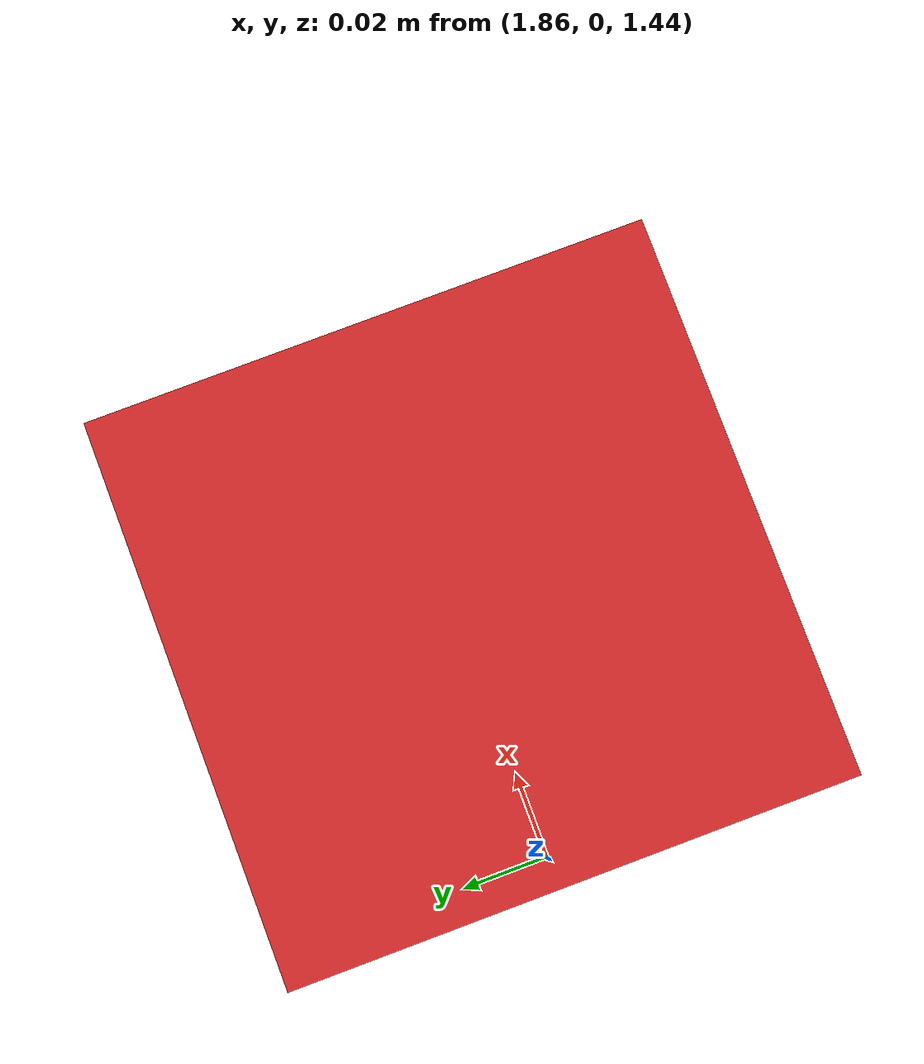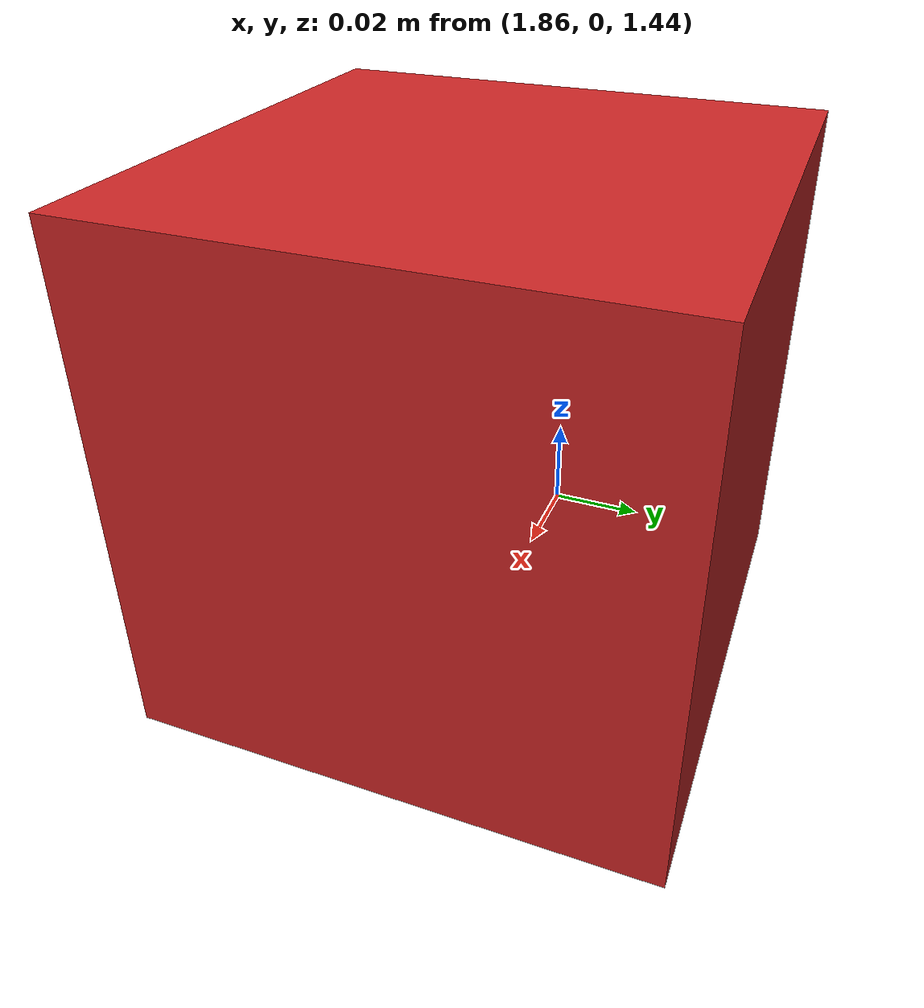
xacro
<?xml version="1.0" ?>

<robot name="depth_camera" xmlns:xacro="http://www.ros.org/wiki/xacro">

  <!-- BEGIN - Include -->
  <xacro:include filename="$(find hiwin_arm)/urdf/robot_parameters.xacro" />
  <xacro:include filename="$(find hiwin_arm)/urdf/links_joints.xacro" />
  <!-- END - Include -->

  <link name="world"/>

  <joint name="camera_joint" type="fixed">
   <origin xyz="${camera_x} 0 ${camera_z}" rpy="0 1.57 0"/>
    <parent link="world"/>
    <child link="${camera_name}"/>
  </joint>

  <link name="${camera_name}">
    <collision>
      <origin xyz="${camera_x} 0 ${camera_z}" rpy="0 0 0"/>
      <geometry>
    <box size="0.1 0.1 0.1"/>
      </geometry>
    </collision>

    <visual>
      <origin xyz="${camera_x} 0 ${camera_z}" rpy="0 0 0"/>
      <geometry>
        <box size="0.1 0.1 0.1"/>
      </geometry>
      <material name="red"/>
    </visual>

    <inertial>
      <mass value="1e-5" />
      <origin xyz="${camera_x} 0 ${camera_z}" rpy="0 0 0"/>
      <inertia ixx="1e-6" ixy="0" ixz="0" iyy="1e-6" iyz="0" izz="1e-6" />
    </inertial>
  </link>

  <gazebo reference="${camera_name}">
    <sensor type="camera" name="camera1">
      <update_rate>30.0</update_rate>
      <camera name="head">
        <horizontal_fov>1.3962634</horizontal_fov>
        <image>
          <width>800</width>
          <height>800</height>
          <format>R8G8B8</format>
        </image>
        <clip>
          <near>0.02</near>
          <far>300</far>
        </clip>
        <noise>
          <type>gaussian</type>
          <!-- Noise is sampled independently per pixel on each frame.
               That pixel's noise value is added to each of its color
               channels, which at that point lie in the range [0,1]. -->
          <mean>0.0</mean>
          <stddev>0.007</stddev>
        </noise>
      </camera>
      <plugin name="camera_controller" filename="libgazebo_ros_camera.so">
        <alwaysOn>true</alwaysOn>
        <updateRate>0.0</updateRate>
        <cameraName>camera</cameraName>
        <imageTopicName>image_raw</imageTopicName>
        <cameraInfoTopicName>camera_info</cameraInfoTopicName>
        <frameName>camera_link</frameName>
        <hackBaseline>0.07</hackBaseline>
        <distortionK1>0.0</distortionK1>
        <distortionK2>0.0</distortionK2>
        <distortionK3>0.0</distortionK3>
        <distortionT1>0.0</distortionT1>
        <distortionT2>0.0</distortionT2>
      </plugin>
    </sensor>
  </gazebo>

</robot>

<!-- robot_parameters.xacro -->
<robot xmlns:xacro="http://www.ros.org/wiki/xacro">
  <xacro:property name="cell_name" value="cell" />
  <xacro:property name="link_00_name" value="base_link" />
  <xacro:property name="link_01_name" value="link_01" />
  <xacro:property name="link_02_name" value="link_02" />
  <xacro:property name="link_03_name" value="link_03" />
  <xacro:property name="link_04_name" value="link_04" />
  <xacro:property name="gripper_name" value="electric_gripper" />
  <xacro:property name="camera_z" value="1.7" />
  <xacro:property name="camera_x" value="0.21" />
  <xacro:property name="camera_name" value="openni_camera_link" />
</robot>
